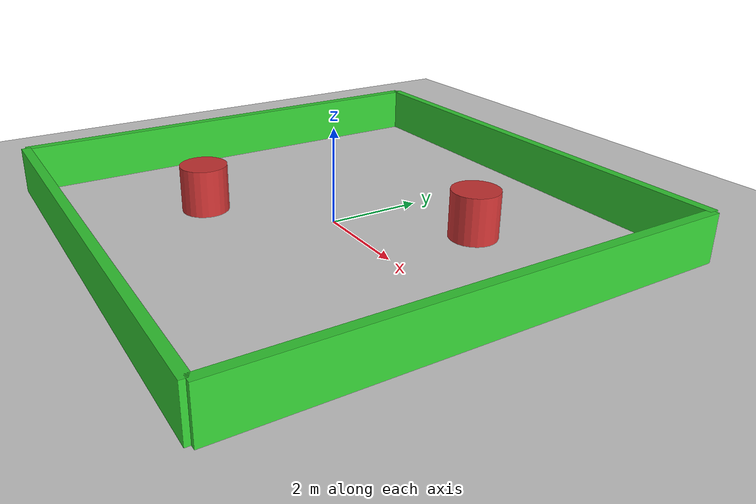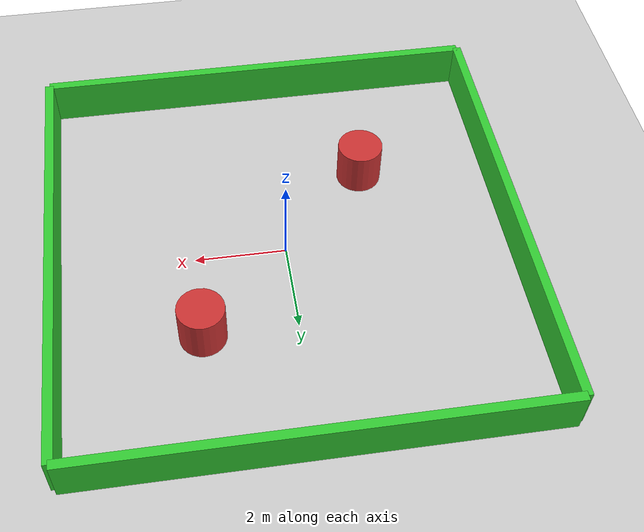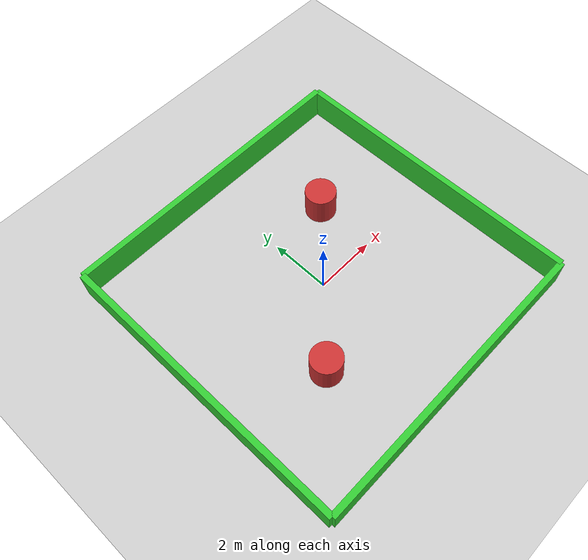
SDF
<?xml version="1.0" ?>
<sdf version="1.6">
  <world name="turtle_world">
    <!-- A global light source -->
    <include>
      <uri>model://sun</uri>
    </include>

    <!-- A ground plane -->
    <include>
      <uri>model://ground_plane</uri>
    </include>

    <!-- Walls to create a boundary -->
    <model name="wall_north">
      <static>true</static>
      <pose>0 5 0.5 0 0 0</pose>
      <link name="link">
        <collision name="collision">
          <geometry>
            <box>
              <size>10 0.2 1</size>
            </box>
          </geometry>
        </collision>
        <visual name="visual">
          <geometry>
            <box>
              <size>10 0.2 1</size>
            </box>
          </geometry>
          <material>
            <ambient>0.2 0.8 0.2 1</ambient>
            <diffuse>0.2 0.8 0.2 1</diffuse>
          </material>
        </visual>
      </link>
    </model>

    <model name="wall_south">
      <static>true</static>
      <pose>0 -5 0.5 0 0 0</pose>
      <link name="link">
        <collision name="collision">
          <geometry>
            <box>
              <size>10 0.2 1</size>
            </box>
          </geometry>
        </collision>
        <visual name="visual">
          <geometry>
            <box>
              <size>10 0.2 1</size>
            </box>
          </geometry>
          <material>
            <ambient>0.2 0.8 0.2 1</ambient>
            <diffuse>0.2 0.8 0.2 1</diffuse>
          </material>
        </visual>
      </link>
    </model>

    <model name="wall_east">
      <static>true</static>
      <pose>5 0 0.5 0 0 0</pose>
      <link name="link">
        <collision name="collision">
          <geometry>
            <box>
              <size>0.2 10 1</size>
            </box>
          </geometry>
        </collision>
        <visual name="visual">
          <geometry>
            <box>
              <size>0.2 10 1</size>
            </box>
          </geometry>
          <material>
            <ambient>0.2 0.8 0.2 1</ambient>
            <diffuse>0.2 0.8 0.2 1</diffuse>
          </material>
        </visual>
      </link>
    </model>

    <model name="wall_west">
      <static>true</static>
      <pose>-5 0 0.5 0 0 0</pose>
      <link name="link">
        <collision name="collision">
          <geometry>
            <box>
              <size>0.2 10 1</size>
            </box>
          </geometry>
        </collision>
        <visual name="visual">
          <geometry>
            <box>
              <size>0.2 10 1</size>
            </box>
          </geometry>
          <material>
            <ambient>0.2 0.8 0.2 1</ambient>
            <diffuse>0.2 0.8 0.2 1</diffuse>
          </material>
        </visual>
      </link>
    </model>

    <!-- Add some obstacles -->
    <model name="obstacle1">
      <static>true</static>
      <pose>2 2 0.5 0 0 0</pose>
      <link name="link">
        <collision name="collision">
          <geometry>
            <cylinder>
              <radius>0.5</radius>
              <length>1</length>
            </cylinder>
          </geometry>
        </collision>
        <visual name="visual">
          <geometry>
            <cylinder>
              <radius>0.5</radius>
              <length>1</length>
            </cylinder>
          </geometry>
          <material>
            <ambient>0.8 0.2 0.2 1</ambient>
            <diffuse>0.8 0.2 0.2 1</diffuse>
          </material>
        </visual>
      </link>
    </model>

    <model name="obstacle2">
      <static>true</static>
      <pose>-2 -2 0.5 0 0 0</pose>
      <link name="link">
        <collision name="collision">
          <geometry>
            <cylinder>
              <radius>0.5</radius>
              <length>1</length>
            </cylinder>
          </geometry>
        </collision>
        <visual name="visual">
          <geometry>
            <cylinder>
              <radius>0.5</radius>
              <length>1</length>
            </cylinder>
          </geometry>
          <material>
            <ambient>0.8 0.2 0.2 1</ambient>
            <diffuse>0.8 0.2 0.2 1</diffuse>
          </material>
        </visual>
      </link>
    </model>

    <!-- Physics settings -->
    <physics type="ode">
      <real_time_update_rate>1000.0</real_time_update_rate>
      <max_step_size>0.001</max_step_size>
      <real_time_factor>1</real_time_factor>
      <ode>
        <solver>
          <type>quick</type>
          <iters>150</iters>
          <precon_iters>0</precon_iters>
          <sor>1.400000</sor>
          <use_dynamic_moi_rescaling>1</use_dynamic_moi_rescaling>
        </solver>
        <constraints>
          <cfm>0.00001</cfm>
          <erp>0.2</erp>
          <contact_max_correcting_vel>2000.000000</contact_max_correcting_vel>
          <contact_surface_layer>0.01000</contact_surface_layer>
        </constraints>
      </ode>
    </physics>
  </world>
</sdf>
